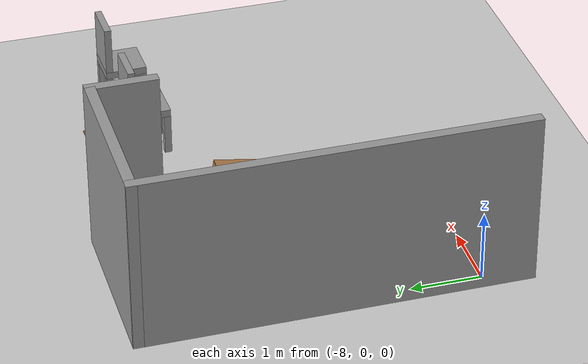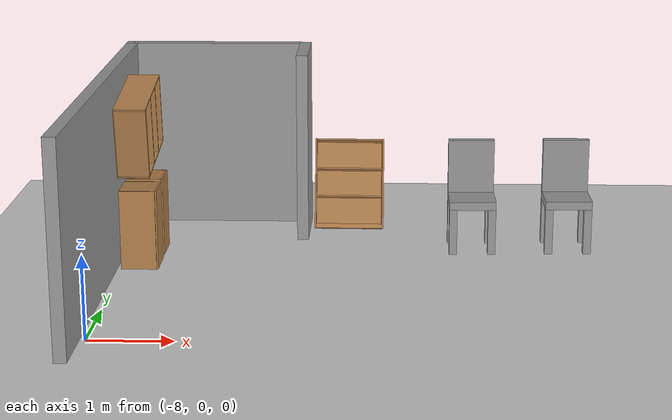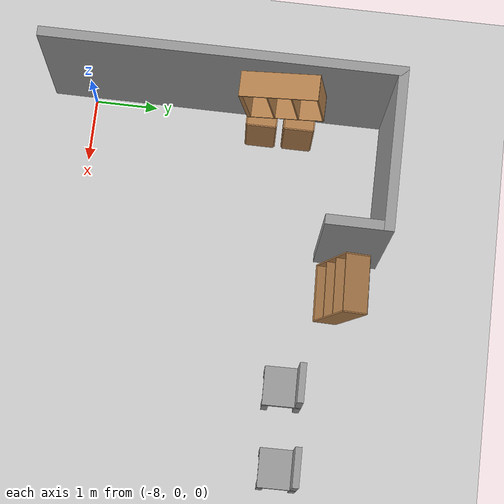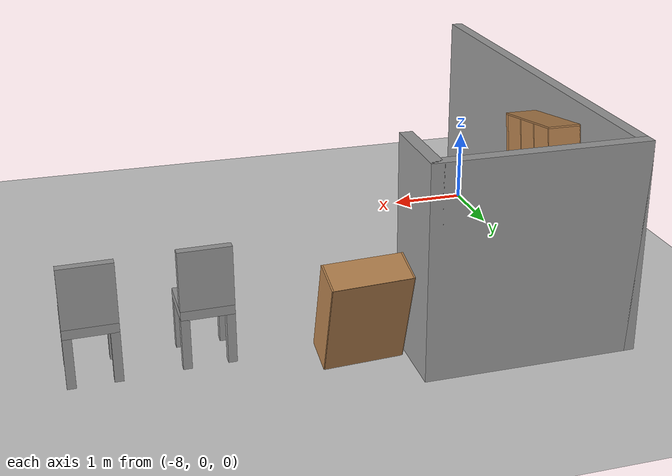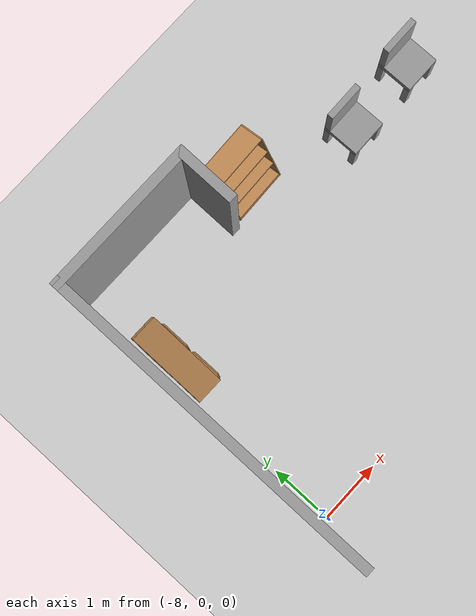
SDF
<sdf version="1.7">
 <world name="default">
  <model name="ground_plane">
   <static>1</static>
   <link name="link">
    <collision name="collision">
     <geometry><plane><normal>0 0 1</normal><size>100 100</size></plane></geometry>
     <surface>
      <contact><collide_bitmask>65535</collide_bitmask></contact>
      <friction><ode><mu>100</mu><mu2>50</mu2></ode></friction>
     </surface>
    </collision>
    <visual name="visual">
     <cast_shadows>0</cast_shadows>
     <geometry><plane><normal>0 0 1</normal><size>100 100</size></plane></geometry>
     <material>
      <script><uri>file://media/materials/scripts/gazebo.material</uri><name>Gazebo/Grey</name></script>
     </material>
    </visual>
   </link>
  </model>
  <model name="demo_clean">
   <link name="Wall_0">
    <pose>-8.14649 2.06618 0 0 0 -1.5708</pose>
    <visual name="Wall_0_Visual">
     <pose>0 0 1.25 0 -0 0</pose>
     <geometry><box><size>5.5 0.15 2.5</size></box></geometry>
     <material>
      <script><uri>file://media/materials/scripts/gazebo.material</uri><name>Gazebo/Grey</name></script>
      <ambient>1 1 1 1</ambient>
      <shader type="pixel"/>
     </material>
     <meta><layer>0</layer></meta>
    </visual>
    <collision name="Wall_0_Collision">
     <pose>0 0 1.25 0 -0 0</pose>
     <geometry><box><size>5.5 0.15 2.5</size></box></geometry>
     <surface>
      <friction>
       <ode><mu>1</mu><mu2>1</mu2><fdir1>0 0 0</fdir1><slip1>0</slip1><slip2>0</slip2></ode>
       <torsional>
        <coefficient>1</coefficient>
        <patch_radius>0</patch_radius>
        <surface_radius>0</surface_radius>
        <use_patch_radius>1</use_patch_radius>
        <ode><slip>0</slip></ode>
       </torsional>
      </friction>
      <bounce><restitution_coefficient>0</restitution_coefficient><threshold>1e+06</threshold></bounce>
      <contact>
       <collide_without_contact>0</collide_without_contact>
       <collide_without_contact_bitmask>1</collide_without_contact_bitmask>
       <collide_bitmask>1</collide_bitmask>
       <ode>
        <soft_cfm>0</soft_cfm>
        <soft_erp>0.2</soft_erp>
        <kp>1e+13</kp>
        <kd>1</kd>
        <max_vel>0.01</max_vel>
        <min_depth>0</min_depth>
       </ode>
       <bullet>
        <split_impulse>1</split_impulse>
        <split_impulse_penetration_threshold>-0.01</split_impulse_penetration_threshold>
        <soft_cfm>0</soft_cfm>
        <soft_erp>0.2</soft_erp>
        <kp>1e+13</kp>
        <kd>1</kd>
       </bullet>
      </contact>
     </surface>
    </collision>
   </link>
   <link name="Wall_6">
    <pose>-6.97149 4.74118 0 0 -0 0</pose>
    <visual name="Wall_6_Visual">
     <pose>0 0 1.25 0 -0 0</pose>
     <geometry><box><size>2.5 0.15 2.5</size></box></geometry>
     <material>
      <script><uri>file://media/materials/scripts/gazebo.material</uri><name>Gazebo/Grey</name></script>
      <ambient>1 1 1 1</ambient>
      <shader type="pixel"/>
     </material>
     <meta><layer>0</layer></meta>
    </visual>
    <collision name="Wall_6_Collision">
     <pose>0 0 1.25 0 -0 0</pose>
     <geometry><box><size>2.5 0.15 2.5</size></box></geometry>
     <surface>
      <friction>
       <ode><mu>1</mu><mu2>1</mu2><fdir1>0 0 0</fdir1><slip1>0</slip1><slip2>0</slip2></ode>
       <torsional>
        <coefficient>1</coefficient>
        <patch_radius>0</patch_radius>
        <surface_radius>0</surface_radius>
        <use_patch_radius>1</use_patch_radius>
        <ode><slip>0</slip></ode>
       </torsional>
      </friction>
      <bounce><restitution_coefficient>0</restitution_coefficient><threshold>1e+06</threshold></bounce>
      <contact>
       <collide_without_contact>0</collide_without_contact>
       <collide_without_contact_bitmask>1</collide_without_contact_bitmask>
       <collide_bitmask>1</collide_bitmask>
       <ode>
        <soft_cfm>0</soft_cfm>
        <soft_erp>0.2</soft_erp>
        <kp>1e+13</kp>
        <kd>1</kd>
        <max_vel>0.01</max_vel>
        <min_depth>0</min_depth>
       </ode>
       <bullet>
        <split_impulse>1</split_impulse>
        <split_impulse_penetration_threshold>-0.01</split_impulse_penetration_threshold>
        <soft_cfm>0</soft_cfm>
        <soft_erp>0.2</soft_erp>
        <kp>1e+13</kp>
        <kd>1</kd>
       </bullet>
      </contact>
     </surface>
    </collision>
   </link>
   <link name="Wall_7">
    <pose>-5.79649 4.31618 0 0 0 -1.5708</pose>
    <visual name="Wall_7_Visual">
     <pose>0 0 1.25 0 -0 0</pose>
     <geometry><box><size>1 0.15 2.5</size></box></geometry>
     <material>
      <script><uri>file://media/materials/scripts/gazebo.material</uri><name>Gazebo/Grey</name></script>
      <ambient>1 1 1 1</ambient>
      <shader type="pixel"/>
     </material>
     <meta><layer>0</layer></meta>
    </visual>
    <collision name="Wall_7_Collision">
     <pose>0 0 1.25 0 -0 0</pose>
     <geometry><box><size>1 0.15 2.5</size></box></geometry>
     <surface>
      <friction>
       <ode><mu>1</mu><mu2>1</mu2><fdir1>0 0 0</fdir1><slip1>0</slip1><slip2>0</slip2></ode>
       <torsional>
        <coefficient>1</coefficient>
        <patch_radius>0</patch_radius>
        <surface_radius>0</surface_radius>
        <use_patch_radius>1</use_patch_radius>
        <ode><slip>0</slip></ode>
       </torsional>
      </friction>
      <bounce><restitution_coefficient>0</restitution_coefficient><threshold>1e+06</threshold></bounce>
      <contact>
       <collide_without_contact>0</collide_without_contact>
       <collide_without_contact_bitmask>1</collide_without_contact_bitmask>
       <collide_bitmask>1</collide_bitmask>
       <ode>
        <soft_cfm>0</soft_cfm>
        <soft_erp>0.2</soft_erp>
        <kp>1e+13</kp>
        <kd>1</kd>
        <max_vel>0.01</max_vel>
        <min_depth>0</min_depth>
       </ode>
       <bullet>
        <split_impulse>1</split_impulse>
        <split_impulse_penetration_threshold>-0.01</split_impulse_penetration_threshold>
        <soft_cfm>0</soft_cfm>
        <soft_erp>0.2</soft_erp>
        <kp>1e+13</kp>
        <kd>1</kd>
       </bullet>
      </contact>
     </surface>
    </collision>
   </link>
   <static>1</static>
  </model>
  <model name="simple_chair_0_clone_0">
   <link name="link_0_clone">
    <inertial>
     <mass>1</mass>
     <inertia>
      <ixx>0.166667</ixx>
      <ixy>0</ixy>
      <ixz>0</ixz>
      <iyy>0.166667</iyy>
      <iyz>0</iyz>
      <izz>0.166667</izz>
     </inertia>
    </inertial>
    <pose>-0.041667 -0 0.165833 0 -0 0</pose>
    <visual name="visual">
     <geometry><box><size>0.6 0.6 0.11</size></box></geometry>
     <material>
      <lighting>1</lighting>
      <script><uri>file://media/materials/scripts/gazebo.material</uri><name>Gazebo/Grey</name></script>
      <shader type="pixel"><normal_map>__default__</normal_map></shader>
      <ambient>0.3 0.3 0.3 1</ambient>
      <diffuse>0.7 0.7 0.7 1</diffuse>
      <specular>0.01 0.01 0.01 1</specular>
      <emissive>0 0 0 1</emissive>
     </material>
    </visual>
    <collision name="collision">
     <geometry><box><size>0.6 0.6 0.1</size></box></geometry>
     <surface>
      <friction>
       <ode><mu>1</mu><mu2>1</mu2><fdir1>0 0 0</fdir1><slip1>0</slip1><slip2>0</slip2></ode>
       <torsional>
        <coefficient>1</coefficient>
        <patch_radius>0</patch_radius>
        <surface_radius>0</surface_radius>
        <use_patch_radius>1</use_patch_radius>
        <ode><slip>0</slip></ode>
       </torsional>
      </friction>
      <bounce><restitution_coefficient>0</restitution_coefficient><threshold>1e+06</threshold></bounce>
      <contact>
       <collide_without_contact>0</collide_without_contact>
       <collide_without_contact_bitmask>1</collide_without_contact_bitmask>
       <collide_bitmask>1</collide_bitmask>
       <ode>
        <soft_cfm>0</soft_cfm>
        <soft_erp>0.2</soft_erp>
        <kp>1e+13</kp>
        <kd>1</kd>
        <max_vel>0.01</max_vel>
        <min_depth>0</min_depth>
       </ode>
       <bullet>
        <split_impulse>1</split_impulse>
        <split_impulse_penetration_threshold>-0.01</split_impulse_penetration_threshold>
        <soft_cfm>0</soft_cfm>
        <soft_erp>0.2</soft_erp>
        <kp>1e+13</kp>
        <kd>1</kd>
       </bullet>
      </contact>
     </surface>
    </collision>
   </link>
   <link name="link_1_clone">
    <inertial>
     <mass>1</mass>
     <inertia>
      <ixx>0.166667</ixx>
      <ixy>0</ixy>
      <ixz>0</ixz>
      <iyy>0.166667</iyy>
      <iyz>0</iyz>
      <izz>0.166667</izz>
     </inertia>
    </inertial>
    <pose>-0.291667 0.25 -0.184167 0 -0 0</pose>
    <visual name="visual">
     <geometry><box><size>0.1 0.1 0.6</size></box></geometry>
     <material>
      <lighting>1</lighting>
      <script><uri>file://media/materials/scripts/gazebo.material</uri><name>Gazebo/Grey</name></script>
      <shader type="pixel"><normal_map>__default__</normal_map></shader>
      <ambient>0.3 0.3 0.3 1</ambient>
      <diffuse>0.7 0.7 0.7 1</diffuse>
      <specular>0.01 0.01 0.01 1</specular>
      <emissive>0 0 0 1</emissive>
     </material>
    </visual>
    <collision name="collision">
     <geometry><box><size>0.1 0.1 0.6</size></box></geometry>
     <surface>
      <friction>
       <ode><mu>1</mu><mu2>1</mu2><fdir1>0 0 0</fdir1><slip1>0</slip1><slip2>0</slip2></ode>
       <torsional>
        <coefficient>1</coefficient>
        <patch_radius>0</patch_radius>
        <surface_radius>0</surface_radius>
        <use_patch_radius>1</use_patch_radius>
        <ode><slip>0</slip></ode>
       </torsional>
      </friction>
      <bounce><restitution_coefficient>0</restitution_coefficient><threshold>1e+06</threshold></bounce>
      <contact>
       <collide_without_contact>0</collide_without_contact>
       <collide_without_contact_bitmask>1</collide_without_contact_bitmask>
       <collide_bitmask>1</collide_bitmask>
       <ode>
        <soft_cfm>0</soft_cfm>
        <soft_erp>0.2</soft_erp>
        <kp>1e+13</kp>
        <kd>1</kd>
        <max_vel>0.01</max_vel>
        <min_depth>0</min_depth>
       </ode>
       <bullet>
        <split_impulse>1</split_impulse>
        <split_impulse_penetration_threshold>-0.01</split_impulse_penetration_threshold>
        <soft_cfm>0</soft_cfm>
        <soft_erp>0.2</soft_erp>
        <kp>1e+13</kp>
        <kd>1</kd>
       </bullet>
      </contact>
     </surface>
    </collision>
   </link>
   <link name="link_1_clone_0">
    <inertial>
     <mass>1</mass>
     <inertia>
      <ixx>0.166667</ixx>
      <ixy>0</ixy>
      <ixz>0</ixz>
      <iyy>0.166667</iyy>
      <iyz>0</iyz>
      <izz>0.166667</izz>
     </inertia>
    </inertial>
    <pose>0.208333 0.25 -0.184167 0 -0 0</pose>
    <visual name="visual">
     <geometry><box><size>0.1 0.1 0.6</size></box></geometry>
     <material>
      <lighting>1</lighting>
      <script><uri>file://media/materials/scripts/gazebo.material</uri><name>Gazebo/Grey</name></script>
      <shader type="pixel"><normal_map>__default__</normal_map></shader>
      <ambient>0.3 0.3 0.3 1</ambient>
      <diffuse>0.7 0.7 0.7 1</diffuse>
      <specular>0.01 0.01 0.01 1</specular>
      <emissive>0 0 0 1</emissive>
     </material>
    </visual>
    <collision name="collision">
     <geometry><box><size>0.1 0.1 0.6</size></box></geometry>
     <surface>
      <friction>
       <ode><mu>1</mu><mu2>1</mu2><fdir1>0 0 0</fdir1><slip1>0</slip1><slip2>0</slip2></ode>
       <torsional>
        <coefficient>1</coefficient>
        <patch_radius>0</patch_radius>
        <surface_radius>0</surface_radius>
        <use_patch_radius>1</use_patch_radius>
        <ode><slip>0</slip></ode>
       </torsional>
      </friction>
      <bounce><restitution_coefficient>0</restitution_coefficient><threshold>1e+06</threshold></bounce>
      <contact>
       <collide_without_contact>0</collide_without_contact>
       <collide_without_contact_bitmask>1</collide_without_contact_bitmask>
       <collide_bitmask>1</collide_bitmask>
       <ode>
        <soft_cfm>0</soft_cfm>
        <soft_erp>0.2</soft_erp>
        <kp>1e+13</kp>
        <kd>1</kd>
        <max_vel>0.01</max_vel>
        <min_depth>0</min_depth>
       </ode>
       <bullet>
        <split_impulse>1</split_impulse>
        <split_impulse_penetration_threshold>-0.01</split_impulse_penetration_threshold>
        <soft_cfm>0</soft_cfm>
        <soft_erp>0.2</soft_erp>
        <kp>1e+13</kp>
        <kd>1</kd>
       </bullet>
      </contact>
     </surface>
    </collision>
   </link>
   <link name="link_1_clone_1">
    <inertial>
     <mass>1</mass>
     <inertia>
      <ixx>0.166667</ixx>
      <ixy>0</ixy>
      <ixz>0</ixz>
      <iyy>0.166667</iyy>
      <iyz>0</iyz>
      <izz>0.166667</izz>
     </inertia>
    </inertial>
    <pose>0.208333 -0.25 -0.184167 0 -0 0</pose>
    <visual name="visual">
     <geometry><box><size>0.1 0.1 0.6</size></box></geometry>
     <material>
      <lighting>1</lighting>
      <script><uri>file://media/materials/scripts/gazebo.material</uri><name>Gazebo/Grey</name></script>
      <shader type="pixel"><normal_map>__default__</normal_map></shader>
      <ambient>0.3 0.3 0.3 1</ambient>
      <diffuse>0.7 0.7 0.7 1</diffuse>
      <specular>0.01 0.01 0.01 1</specular>
      <emissive>0 0 0 1</emissive>
     </material>
    </visual>
    <collision name="collision">
     <geometry><box><size>0.1 0.1 0.6</size></box></geometry>
     <surface>
      <friction>
       <ode><mu>1</mu><mu2>1</mu2><fdir1>0 0 0</fdir1><slip1>0</slip1><slip2>0</slip2></ode>
       <torsional>
        <coefficient>1</coefficient>
        <patch_radius>0</patch_radius>
        <surface_radius>0</surface_radius>
        <use_patch_radius>1</use_patch_radius>
        <ode><slip>0</slip></ode>
       </torsional>
      </friction>
      <bounce><restitution_coefficient>0</restitution_coefficient><threshold>1e+06</threshold></bounce>
      <contact>
       <collide_without_contact>0</collide_without_contact>
       <collide_without_contact_bitmask>1</collide_without_contact_bitmask>
       <collide_bitmask>1</collide_bitmask>
       <ode>
        <soft_cfm>0</soft_cfm>
        <soft_erp>0.2</soft_erp>
        <kp>1e+13</kp>
        <kd>1</kd>
        <max_vel>0.01</max_vel>
        <min_depth>0</min_depth>
       </ode>
       <bullet>
        <split_impulse>1</split_impulse>
        <split_impulse_penetration_threshold>-0.01</split_impulse_penetration_threshold>
        <soft_cfm>0</soft_cfm>
        <soft_erp>0.2</soft_erp>
        <kp>1e+13</kp>
        <kd>1</kd>
       </bullet>
      </contact>
     </surface>
    </collision>
   </link>
   <link name="link_1_clone_clone">
    <inertial>
     <mass>1</mass>
     <inertia>
      <ixx>0.166667</ixx>
      <ixy>0</ixy>
      <ixz>0</ixz>
      <iyy>0.166667</iyy>
      <iyz>0</iyz>
      <izz>0.166667</izz>
     </inertia>
    </inertial>
    <pose>-0.291667 -0.25 -0.184167 0 -0 0</pose>
    <visual name="visual">
     <geometry><box><size>0.1 0.1 0.6</size></box></geometry>
     <material>
      <lighting>1</lighting>
      <script><uri>file://media/materials/scripts/gazebo.material</uri><name>Gazebo/Grey</name></script>
      <shader type="pixel"><normal_map>__default__</normal_map></shader>
      <ambient>0.3 0.3 0.3 1</ambient>
      <diffuse>0.7 0.7 0.7 1</diffuse>
      <specular>0.01 0.01 0.01 1</specular>
      <emissive>0 0 0 1</emissive>
     </material>
    </visual>
    <collision name="collision">
     <geometry><box><size>0.1 0.1 0.6</size></box></geometry>
     <surface>
      <friction>
       <ode><mu>1</mu><mu2>1</mu2><fdir1>0 0 0</fdir1><slip1>0</slip1><slip2>0</slip2></ode>
       <torsional>
        <coefficient>1</coefficient>
        <patch_radius>0</patch_radius>
        <surface_radius>0</surface_radius>
        <use_patch_radius>1</use_patch_radius>
        <ode><slip>0</slip></ode>
       </torsional>
      </friction>
      <bounce><restitution_coefficient>0</restitution_coefficient><threshold>1e+06</threshold></bounce>
      <contact>
       <collide_without_contact>0</collide_without_contact>
       <collide_without_contact_bitmask>1</collide_without_contact_bitmask>
       <collide_bitmask>1</collide_bitmask>
       <ode>
        <soft_cfm>0</soft_cfm>
        <soft_erp>0.2</soft_erp>
        <kp>1e+13</kp>
        <kd>1</kd>
        <max_vel>0.01</max_vel>
        <min_depth>0</min_depth>
       </ode>
       <bullet>
        <split_impulse>1</split_impulse>
        <split_impulse_penetration_threshold>-0.01</split_impulse_penetration_threshold>
        <soft_cfm>0</soft_cfm>
        <soft_erp>0.2</soft_erp>
        <kp>1e+13</kp>
        <kd>1</kd>
       </bullet>
      </contact>
     </surface>
    </collision>
   </link>
   <link name="link_2_clone">
    <inertial>
     <mass>1</mass>
     <inertia>
      <ixx>0.166667</ixx>
      <ixy>0</ixy>
      <ixz>0</ixz>
      <iyy>0.166667</iyy>
      <iyz>0</iyz>
      <izz>0.166667</izz>
     </inertia>
    </inertial>
    <pose>0.208333 -0 0.570833 0 -0 0</pose>
    <visual name="visual">
     <geometry><box><size>0.1 0.6 0.7</size></box></geometry>
     <material>
      <lighting>1</lighting>
      <script><uri>file://media/materials/scripts/gazebo.material</uri><name>Gazebo/Grey</name></script>
      <shader type="pixel"><normal_map>__default__</normal_map></shader>
      <ambient>0.3 0.3 0.3 1</ambient>
      <diffuse>0.7 0.7 0.7 1</diffuse>
      <specular>0.01 0.01 0.01 1</specular>
      <emissive>0 0 0 1</emissive>
     </material>
    </visual>
    <collision name="collision">
     <geometry><box><size>0.1 0.6 0.7</size></box></geometry>
     <surface>
      <friction>
       <ode><mu>1</mu><mu2>1</mu2><fdir1>0 0 0</fdir1><slip1>0</slip1><slip2>0</slip2></ode>
       <torsional>
        <coefficient>1</coefficient>
        <patch_radius>0</patch_radius>
        <surface_radius>0</surface_radius>
        <use_patch_radius>1</use_patch_radius>
        <ode><slip>0</slip></ode>
       </torsional>
      </friction>
      <bounce><restitution_coefficient>0</restitution_coefficient><threshold>1e+06</threshold></bounce>
      <contact>
       <collide_without_contact>0</collide_without_contact>
       <collide_without_contact_bitmask>1</collide_without_contact_bitmask>
       <collide_bitmask>1</collide_bitmask>
       <ode>
        <soft_cfm>0</soft_cfm>
        <soft_erp>0.2</soft_erp>
        <kp>1e+13</kp>
        <kd>1</kd>
        <max_vel>0.01</max_vel>
        <min_depth>0</min_depth>
       </ode>
       <bullet>
        <split_impulse>1</split_impulse>
        <split_impulse_penetration_threshold>-0.01</split_impulse_penetration_threshold>
        <soft_cfm>0</soft_cfm>
        <soft_erp>0.2</soft_erp>
        <kp>1e+13</kp>
        <kd>1</kd>
       </bullet>
      </contact>
     </surface>
    </collision>
   </link>
   <joint name="link_0_clone_JOINT_0" type="fixed">
    <parent>link_0_clone</parent>
    <child>link_1_clone_clone</child>
    <physics>
     <ode><limit><cfm>0</cfm><erp>0.2</erp></limit><suspension><cfm>0</cfm><erp>0.2</erp></suspension></ode>
    </physics>
   </joint>
   <joint name="link_0_clone_JOINT_1" type="fixed">
    <parent>link_0_clone</parent>
    <child>link_1_clone</child>
    <physics>
     <ode><limit><cfm>0</cfm><erp>0.2</erp></limit><suspension><cfm>0</cfm><erp>0.2</erp></suspension></ode>
    </physics>
   </joint>
   <joint name="link_0_clone_JOINT_2" type="fixed">
    <parent>link_0_clone</parent>
    <child>link_1_clone_1</child>
    <physics>
     <ode><limit><cfm>0</cfm><erp>0.2</erp></limit><suspension><cfm>0</cfm><erp>0.2</erp></suspension></ode>
    </physics>
   </joint>
   <joint name="link_0_clone_JOINT_3" type="fixed">
    <parent>link_0_clone</parent>
    <child>link_2_clone</child>
    <physics>
     <ode><limit><cfm>0</cfm><erp>0.2</erp></limit><suspension><cfm>0</cfm><erp>0.2</erp></suspension></ode>
    </physics>
   </joint>
   <joint name="link_0_clone_JOINT_4" type="fixed">
    <parent>link_0_clone</parent>
    <child>link_1_clone_0</child>
    <physics>
     <ode><limit><cfm>0</cfm><erp>0.2</erp></limit><suspension><cfm>0</cfm><erp>0.2</erp></suspension></ode>
    </physics>
   </joint>
   <static>0</static>
   <pose>-3.56784 3.57353 0.484167 0 -0 1.58993</pose>
  </model>
  <model name="simple_chair_0_clone_1">
   <link name="link_0_clone">
    <inertial>
     <mass>1</mass>
     <inertia>
      <ixx>0.166667</ixx>
      <ixy>0</ixy>
      <ixz>0</ixz>
      <iyy>0.166667</iyy>
      <iyz>0</iyz>
      <izz>0.166667</izz>
     </inertia>
    </inertial>
    <pose>-0.041667 -0 0.165833 0 -0 0</pose>
    <visual name="visual">
     <geometry><box><size>0.6 0.6 0.11</size></box></geometry>
     <material>
      <lighting>1</lighting>
      <script><uri>file://media/materials/scripts/gazebo.material</uri><name>Gazebo/Grey</name></script>
      <shader type="pixel"><normal_map>__default__</normal_map></shader>
      <ambient>0.3 0.3 0.3 1</ambient>
      <diffuse>0.7 0.7 0.7 1</diffuse>
      <specular>0.01 0.01 0.01 1</specular>
      <emissive>0 0 0 1</emissive>
     </material>
    </visual>
    <collision name="collision">
     <geometry><box><size>0.6 0.6 0.1</size></box></geometry>
     <surface>
      <friction>
       <ode><mu>1</mu><mu2>1</mu2><fdir1>0 0 0</fdir1><slip1>0</slip1><slip2>0</slip2></ode>
       <torsional>
        <coefficient>1</coefficient>
        <patch_radius>0</patch_radius>
        <surface_radius>0</surface_radius>
        <use_patch_radius>1</use_patch_radius>
        <ode><slip>0</slip></ode>
       </torsional>
      </friction>
      <bounce><restitution_coefficient>0</restitution_coefficient><threshold>1e+06</threshold></bounce>
      <contact>
       <collide_without_contact>0</collide_without_contact>
       <collide_without_contact_bitmask>1</collide_without_contact_bitmask>
       <collide_bitmask>1</collide_bitmask>
       <ode>
        <soft_cfm>0</soft_cfm>
        <soft_erp>0.2</soft_erp>
        <kp>1e+13</kp>
        <kd>1</kd>
        <max_vel>0.01</max_vel>
        <min_depth>0</min_depth>
       </ode>
       <bullet>
        <split_impulse>1</split_impulse>
        <split_impulse_penetration_threshold>-0.01</split_impulse_penetration_threshold>
        <soft_cfm>0</soft_cfm>
        <soft_erp>0.2</soft_erp>
        <kp>1e+13</kp>
        <kd>1</kd>
       </bullet>
      </contact>
     </surface>
    </collision>
   </link>
   <link name="link_1_clone">
    <inertial>
     <mass>1</mass>
     <inertia>
      <ixx>0.166667</ixx>
      <ixy>0</ixy>
      <ixz>0</ixz>
      <iyy>0.166667</iyy>
      <iyz>0</iyz>
      <izz>0.166667</izz>
     </inertia>
    </inertial>
    <pose>-0.291667 0.25 -0.184167 0 -0 0</pose>
    <visual name="visual">
     <geometry><box><size>0.1 0.1 0.6</size></box></geometry>
     <material>
      <lighting>1</lighting>
      <script><uri>file://media/materials/scripts/gazebo.material</uri><name>Gazebo/Grey</name></script>
      <shader type="pixel"><normal_map>__default__</normal_map></shader>
      <ambient>0.3 0.3 0.3 1</ambient>
      <diffuse>0.7 0.7 0.7 1</diffuse>
      <specular>0.01 0.01 0.01 1</specular>
      <emissive>0 0 0 1</emissive>
     </material>
    </visual>
    <collision name="collision">
     <geometry><box><size>0.1 0.1 0.6</size></box></geometry>
     <surface>
      <friction>
       <ode><mu>1</mu><mu2>1</mu2><fdir1>0 0 0</fdir1><slip1>0</slip1><slip2>0</slip2></ode>
       <torsional>
        <coefficient>1</coefficient>
        <patch_radius>0</patch_radius>
        <surface_radius>0</surface_radius>
        <use_patch_radius>1</use_patch_radius>
        <ode><slip>0</slip></ode>
       </torsional>
      </friction>
      <bounce><restitution_coefficient>0</restitution_coefficient><threshold>1e+06</threshold></bounce>
      <contact>
       <collide_without_contact>0</collide_without_contact>
       <collide_without_contact_bitmask>1</collide_without_contact_bitmask>
       <collide_bitmask>1</collide_bitmask>
       <ode>
        <soft_cfm>0</soft_cfm>
        <soft_erp>0.2</soft_erp>
        <kp>1e+13</kp>
        <kd>1</kd>
        <max_vel>0.01</max_vel>
        <min_depth>0</min_depth>
       </ode>
       <bullet>
        <split_impulse>1</split_impulse>
        <split_impulse_penetration_threshold>-0.01</split_impulse_penetration_threshold>
        <soft_cfm>0</soft_cfm>
        <soft_erp>0.2</soft_erp>
        <kp>1e+13</kp>
        <kd>1</kd>
       </bullet>
      </contact>
     </surface>
    </collision>
   </link>
   <link name="link_1_clone_0">
    <inertial>
     <mass>1</mass>
     <inertia>
      <ixx>0.166667</ixx>
      <ixy>0</ixy>
      <ixz>0</ixz>
      <iyy>0.166667</iyy>
      <iyz>0</iyz>
      <izz>0.166667</izz>
     </inertia>
    </inertial>
    <pose>0.208333 0.25 -0.184167 0 -0 0</pose>
    <visual name="visual">
     <geometry><box><size>0.1 0.1 0.6</size></box></geometry>
     <material>
      <lighting>1</lighting>
      <script><uri>file://media/materials/scripts/gazebo.material</uri><name>Gazebo/Grey</name></script>
      <shader type="pixel"><normal_map>__default__</normal_map></shader>
      <ambient>0.3 0.3 0.3 1</ambient>
      <diffuse>0.7 0.7 0.7 1</diffuse>
      <specular>0.01 0.01 0.01 1</specular>
      <emissive>0 0 0 1</emissive>
     </material>
    </visual>
    <collision name="collision">
     <geometry><box><size>0.1 0.1 0.6</size></box></geometry>
     <surface>
      <friction>
       <ode><mu>1</mu><mu2>1</mu2><fdir1>0 0 0</fdir1><slip1>0</slip1><slip2>0</slip2></ode>
       <torsional>
        <coefficient>1</coefficient>
        <patch_radius>0</patch_radius>
        <surface_radius>0</surface_radius>
        <use_patch_radius>1</use_patch_radius>
        <ode><slip>0</slip></ode>
       </torsional>
      </friction>
      <bounce><restitution_coefficient>0</restitution_coefficient><threshold>1e+06</threshold></bounce>
      <contact>
       <collide_without_contact>0</collide_without_contact>
       <collide_without_contact_bitmask>1</collide_without_contact_bitmask>
       <collide_bitmask>1</collide_bitmask>
       <ode>
        <soft_cfm>0</soft_cfm>
        <soft_erp>0.2</soft_erp>
        <kp>1e+13</kp>
        <kd>1</kd>
        <max_vel>0.01</max_vel>
        <min_depth>0</min_depth>
       </ode>
       <bullet>
        <split_impulse>1</split_impulse>
        <split_impulse_penetration_threshold>-0.01</split_impulse_penetration_threshold>
        <soft_cfm>0</soft_cfm>
        <soft_erp>0.2</soft_erp>
        <kp>1e+13</kp>
        <kd>1</kd>
       </bullet>
      </contact>
     </surface>
    </collision>
   </link>
   <link name="link_1_clone_1">
    <inertial>
     <mass>1</mass>
     <inertia>
      <ixx>0.166667</ixx>
      <ixy>0</ixy>
      <ixz>0</ixz>
      <iyy>0.166667</iyy>
      <iyz>0</iyz>
      <izz>0.166667</izz>
     </inertia>
    </inertial>
    <pose>0.208333 -0.25 -0.184167 0 -0 0</pose>
    <visual name="visual">
     <geometry><box><size>0.1 0.1 0.6</size></box></geometry>
     <material>
      <lighting>1</lighting>
      <script><uri>file://media/materials/scripts/gazebo.material</uri><name>Gazebo/Grey</name></script>
      <shader type="pixel"><normal_map>__default__</normal_map></shader>
      <ambient>0.3 0.3 0.3 1</ambient>
      <diffuse>0.7 0.7 0.7 1</diffuse>
      <specular>0.01 0.01 0.01 1</specular>
      <emissive>0 0 0 1</emissive>
     </material>
    </visual>
    <collision name="collision">
     <geometry><box><size>0.1 0.1 0.6</size></box></geometry>
     <surface>
      <friction>
       <ode><mu>1</mu><mu2>1</mu2><fdir1>0 0 0</fdir1><slip1>0</slip1><slip2>0</slip2></ode>
       <torsional>
        <coefficient>1</coefficient>
        <patch_radius>0</patch_radius>
        <surface_radius>0</surface_radius>
        <use_patch_radius>1</use_patch_radius>
        <ode><slip>0</slip></ode>
       </torsional>
      </friction>
      <bounce><restitution_coefficient>0</restitution_coefficient><threshold>1e+06</threshold></bounce>
      <contact>
       <collide_without_contact>0</collide_without_contact>
       <collide_without_contact_bitmask>1</collide_without_contact_bitmask>
       <collide_bitmask>1</collide_bitmask>
       <ode>
        <soft_cfm>0</soft_cfm>
        <soft_erp>0.2</soft_erp>
        <kp>1e+13</kp>
        <kd>1</kd>
        <max_vel>0.01</max_vel>
        <min_depth>0</min_depth>
       </ode>
       <bullet>
        <split_impulse>1</split_impulse>
        <split_impulse_penetration_threshold>-0.01</split_impulse_penetration_threshold>
        <soft_cfm>0</soft_cfm>
        <soft_erp>0.2</soft_erp>
        <kp>1e+13</kp>
        <kd>1</kd>
       </bullet>
      </contact>
     </surface>
    </collision>
   </link>
   <link name="link_1_clone_clone">
    <inertial>
     <mass>1</mass>
     <inertia>
      <ixx>0.166667</ixx>
      <ixy>0</ixy>
      <ixz>0</ixz>
      <iyy>0.166667</iyy>
      <iyz>0</iyz>
      <izz>0.166667</izz>
     </inertia>
    </inertial>
    <pose>-0.291667 -0.25 -0.184167 0 -0 0</pose>
    <visual name="visual">
     <geometry><box><size>0.1 0.1 0.6</size></box></geometry>
     <material>
      <lighting>1</lighting>
      <script><uri>file://media/materials/scripts/gazebo.material</uri><name>Gazebo/Grey</name></script>
      <shader type="pixel"><normal_map>__default__</normal_map></shader>
      <ambient>0.3 0.3 0.3 1</ambient>
      <diffuse>0.7 0.7 0.7 1</diffuse>
      <specular>0.01 0.01 0.01 1</specular>
      <emissive>0 0 0 1</emissive>
     </material>
    </visual>
    <collision name="collision">
     <geometry><box><size>0.1 0.1 0.6</size></box></geometry>
     <surface>
      <friction>
       <ode><mu>1</mu><mu2>1</mu2><fdir1>0 0 0</fdir1><slip1>0</slip1><slip2>0</slip2></ode>
       <torsional>
        <coefficient>1</coefficient>
        <patch_radius>0</patch_radius>
        <surface_radius>0</surface_radius>
        <use_patch_radius>1</use_patch_radius>
        <ode><slip>0</slip></ode>
       </torsional>
      </friction>
      <bounce><restitution_coefficient>0</restitution_coefficient><threshold>1e+06</threshold></bounce>
      <contact>
       <collide_without_contact>0</collide_without_contact>
       <collide_without_contact_bitmask>1</collide_without_contact_bitmask>
       <collide_bitmask>1</collide_bitmask>
       <ode>
        <soft_cfm>0</soft_cfm>
        <soft_erp>0.2</soft_erp>
        <kp>1e+13</kp>
        <kd>1</kd>
        <max_vel>0.01</max_vel>
        <min_depth>0</min_depth>
       </ode>
       <bullet>
        <split_impulse>1</split_impulse>
        <split_impulse_penetration_threshold>-0.01</split_impulse_penetration_threshold>
        <soft_cfm>0</soft_cfm>
        <soft_erp>0.2</soft_erp>
        <kp>1e+13</kp>
        <kd>1</kd>
       </bullet>
      </contact>
     </surface>
    </collision>
   </link>
   <link name="link_2_clone">
    <inertial>
     <mass>1</mass>
     <inertia>
      <ixx>0.166667</ixx>
      <ixy>0</ixy>
      <ixz>0</ixz>
      <iyy>0.166667</iyy>
      <iyz>0</iyz>
      <izz>0.166667</izz>
     </inertia>
    </inertial>
    <pose>0.208333 -0 0.570833 0 -0 0</pose>
    <visual name="visual">
     <geometry><box><size>0.1 0.6 0.7</size></box></geometry>
     <material>
      <lighting>1</lighting>
      <script><uri>file://media/materials/scripts/gazebo.material</uri><name>Gazebo/Grey</name></script>
      <shader type="pixel"><normal_map>__default__</normal_map></shader>
      <ambient>0.3 0.3 0.3 1</ambient>
      <diffuse>0.7 0.7 0.7 1</diffuse>
      <specular>0.01 0.01 0.01 1</specular>
      <emissive>0 0 0 1</emissive>
     </material>
    </visual>
    <collision name="collision">
     <geometry><box><size>0.1 0.6 0.7</size></box></geometry>
     <surface>
      <friction>
       <ode><mu>1</mu><mu2>1</mu2><fdir1>0 0 0</fdir1><slip1>0</slip1><slip2>0</slip2></ode>
       <torsional>
        <coefficient>1</coefficient>
        <patch_radius>0</patch_radius>
        <surface_radius>0</surface_radius>
        <use_patch_radius>1</use_patch_radius>
        <ode><slip>0</slip></ode>
       </torsional>
      </friction>
      <bounce><restitution_coefficient>0</restitution_coefficient><threshold>1e+06</threshold></bounce>
      <contact>
       <collide_without_contact>0</collide_without_contact>
       <collide_without_contact_bitmask>1</collide_without_contact_bitmask>
       <collide_bitmask>1</collide_bitmask>
       <ode>
        <soft_cfm>0</soft_cfm>
        <soft_erp>0.2</soft_erp>
        <kp>1e+13</kp>
        <kd>1</kd>
        <max_vel>0.01</max_vel>
        <min_depth>0</min_depth>
       </ode>
       <bullet>
        <split_impulse>1</split_impulse>
        <split_impulse_penetration_threshold>-0.01</split_impulse_penetration_threshold>
        <soft_cfm>0</soft_cfm>
        <soft_erp>0.2</soft_erp>
        <kp>1e+13</kp>
        <kd>1</kd>
       </bullet>
      </contact>
     </surface>
    </collision>
   </link>
   <joint name="link_0_clone_JOINT_0" type="fixed">
    <parent>link_0_clone</parent>
    <child>link_1_clone_clone</child>
    <physics>
     <ode><limit><cfm>0</cfm><erp>0.2</erp></limit><suspension><cfm>0</cfm><erp>0.2</erp></suspension></ode>
    </physics>
   </joint>
   <joint name="link_0_clone_JOINT_1" type="fixed">
    <parent>link_0_clone</parent>
    <child>link_1_clone</child>
    <physics>
     <ode><limit><cfm>0</cfm><erp>0.2</erp></limit><suspension><cfm>0</cfm><erp>0.2</erp></suspension></ode>
    </physics>
   </joint>
   <joint name="link_0_clone_JOINT_2" type="fixed">
    <parent>link_0_clone</parent>
    <child>link_1_clone_1</child>
    <physics>
     <ode><limit><cfm>0</cfm><erp>0.2</erp></limit><suspension><cfm>0</cfm><erp>0.2</erp></suspension></ode>
    </physics>
   </joint>
   <joint name="link_0_clone_JOINT_3" type="fixed">
    <parent>link_0_clone</parent>
    <child>link_2_clone</child>
    <physics>
     <ode><limit><cfm>0</cfm><erp>0.2</erp></limit><suspension><cfm>0</cfm><erp>0.2</erp></suspension></ode>
    </physics>
   </joint>
   <joint name="link_0_clone_JOINT_4" type="fixed">
    <parent>link_0_clone</parent>
    <child>link_1_clone_0</child>
    <physics>
     <ode><limit><cfm>0</cfm><erp>0.2</erp></limit><suspension><cfm>0</cfm><erp>0.2</erp></suspension></ode>
    </physics>
   </joint>
   <static>0</static>
   <pose>-2.32535 3.63292 0.484167 0 -0 1.58917</pose>
  </model>
  <model name="bookshelf_clone">
   <static>1</static>
   <link name="link">
    <inertial><mass>1</mass></inertial>
    <collision name="back">
     <pose>0 0.005 0.6 0 -0 0</pose>
     <geometry><box><size>0.9 0.01 1.2</size></box></geometry>
    </collision>
    <visual name="visual1">
     <pose>0 0.005 0.6 0 -0 0</pose>
     <geometry><box><size>0.9 0.01 1.2</size></box></geometry>
     <material>
      <script><uri>file://media/materials/scripts/gazebo.material</uri><name>Gazebo/Wood</name></script>
     </material>
    </visual>
    <collision name="left_side">
     <pose>0.45 -0.195 0.6 0 -0 0</pose>
     <geometry><box><size>0.02 0.4 1.2</size></box></geometry>
    </collision>
    <visual name="visual2">
     <pose>0.45 -0.195 0.6 0 -0 0</pose>
     <geometry><box><size>0.02 0.4 1.2</size></box></geometry>
     <material>
      <script><uri>file://media/materials/scripts/gazebo.material</uri><name>Gazebo/Wood</name></script>
     </material>
    </visual>
    <collision name="right_side">
     <pose>-0.45 -0.195 0.6 0 -0 0</pose>
     <geometry><box><size>0.02 0.4 1.2</size></box></geometry>
    </collision>
    <visual name="visual3">
     <pose>-0.45 -0.195 0.6 0 -0 0</pose>
     <geometry><box><size>0.02 0.4 1.2</size></box></geometry>
     <material>
      <script><uri>file://media/materials/scripts/gazebo.material</uri><name>Gazebo/Wood</name></script>
     </material>
    </visual>
    <collision name="bottom">
     <pose>0 -0.195 0.03 0 -0 0</pose>
     <geometry><box><size>0.88 0.4 0.06</size></box></geometry>
    </collision>
    <visual name="visual4">
     <pose>0 -0.195 0.03 0 -0 0</pose>
     <geometry><box><size>0.88 0.4 0.06</size></box></geometry>
     <material>
      <script><uri>file://media/materials/scripts/gazebo.material</uri><name>Gazebo/Wood</name></script>
     </material>
    </visual>
    <collision name="top">
     <pose>0 -0.195 1.19 0 -0 0</pose>
     <geometry><box><size>0.88 0.4 0.02</size></box></geometry>
    </collision>
    <visual name="visual5">
     <pose>0 -0.195 1.19 0 -0 0</pose>
     <geometry><box><size>0.88 0.4 0.02</size></box></geometry>
     <material>
      <script><uri>file://media/materials/scripts/gazebo.material</uri><name>Gazebo/Wood</name></script>
     </material>
    </visual>
    <collision name="low_shelf">
     <pose>0 -0.195 0.43 0 -0 0</pose>
     <geometry><box><size>0.88 0.4 0.02</size></box></geometry>
    </collision>
    <visual name="visual6">
     <pose>0 -0.195 0.43 0 -0 0</pose>
     <geometry><box><size>0.88 0.4 0.02</size></box></geometry>
     <material>
      <script><uri>file://media/materials/scripts/gazebo.material</uri><name>Gazebo/Wood</name></script>
     </material>
    </visual>
    <collision name="high_shelf">
     <pose>0 -0.195 0.8 0 -0 0</pose>
     <geometry><box><size>0.88 0.4 0.02</size></box></geometry>
    </collision>
    <visual name="visual7">
     <pose>0 -0.195 0.8 0 -0 0</pose>
     <geometry><box><size>0.88 0.4 0.02</size></box></geometry>
     <material>
      <script><uri>file://media/materials/scripts/gazebo.material</uri><name>Gazebo/Wood</name></script>
     </material>
    </visual>
   </link>
   <pose>-8.02252 2.43972 1.64227 0 1.40699 1.56458</pose>
  </model>
  <model name="cabinet_clone_1">
   <static>1</static>
   <link name="cabinet_bottom_plate">
    <inertial>
     <pose>0 0 -1 0 -0 0</pose>
     <inertia><ixx>2.05</ixx><ixy>0</ixy><ixz>0</ixz><iyy>2.05</iyy><iyz>0</iyz><izz>2.05</izz></inertia>
     <mass>25</mass>
    </inertial>
    <collision name="cabinet_bottom_plate_geom">
     <pose>0 0 0.01 0 -0 0</pose>
     <geometry><box><size>0.45 0.45 0.02</size></box></geometry>
    </collision>
    <visual name="cabinet_bottom_plate_geom_visual">
     <pose>0 0 0.01 0 -0 0</pose>
     <geometry><box><size>0.45 0.45 0.02</size></box></geometry>
     <material>
      <script><uri>file://media/materials/scripts/gazebo.material</uri><name>Gazebo/Wood</name></script>
     </material>
    </visual>
    <collision name="cabinet_bottom_plate_geom_cabinet_back_plate">
     <pose>0.235 0 0.51 0 -0 0</pose>
     <geometry><box><size>0.02 0.45 1.02</size></box></geometry>
    </collision>
    <visual name="cabinet_bottom_plate_geom_cabinet_back_plate_visual">
     <pose>0.235 0 0.51 0 -0 0</pose>
     <geometry><box><size>0.02 0.45 1.02</size></box></geometry>
     <material>
      <script><uri>file://media/materials/scripts/gazebo.material</uri><name>Gazebo/Wood</name></script>
     </material>
    </visual>
    <collision name="cabinet_bottom_plate_geom_cabinet_left_plate">
     <pose>0 0.235 0.51 0 -0 0</pose>
     <geometry><box><size>0.45 0.02 1.02</size></box></geometry>
    </collision>
    <visual name="cabinet_bottom_plate_geom_cabinet_left_plate_visual">
     <pose>0 0.235 0.51 0 -0 0</pose>
     <geometry><box><size>0.45 0.02 1.02</size></box></geometry>
     <material>
      <script><uri>file://media/materials/scripts/gazebo.material</uri><name>Gazebo/Wood</name></script>
     </material>
    </visual>
    <collision name="cabinet_bottom_plate_geom_cabinet_middle_plate">
     <pose>0 0 0.51 0 -0 0</pose>
     <geometry><box><size>0.45 0.45 0.02</size></box></geometry>
    </collision>
    <visual name="cabinet_bottom_plate_geom_cabinet_middle_plate_visual">
     <pose>0 0 0.51 0 -0 0</pose>
     <geometry><box><size>0.45 0.45 0.02</size></box></geometry>
     <material>
      <script><uri>file://media/materials/scripts/gazebo.material</uri><name>Gazebo/Wood</name></script>
     </material>
    </visual>
    <collision name="cabinet_bottom_plate_geom_cabinet_right_plate">
     <pose>0 -0.235 0.51 0 -0 0</pose>
     <geometry><box><size>0.45 0.02 1.02</size></box></geometry>
    </collision>
    <visual name="cabinet_bottom_plate_geom_cabinet_right_plate_visual">
     <pose>0 -0.235 0.51 0 -0 0</pose>
     <geometry><box><size>0.45 0.02 1.02</size></box></geometry>
     <material>
      <script><uri>file://media/materials/scripts/gazebo.material</uri><name>Gazebo/Wood</name></script>
     </material>
    </visual>
    <collision name="cabinet_bottom_plate_geom_cabinet_top_plate">
     <pose>0 0 1.01 0 -0 0</pose>
     <geometry><box><size>0.45 0.45 0.02</size></box></geometry>
    </collision>
    <visual name="cabinet_bottom_plate_geom_cabinet_top_plate_visual">
     <pose>0 0 1.01 0 -0 0</pose>
     <geometry><box><size>0.45 0.45 0.02</size></box></geometry>
     <material>
      <script><uri>file://media/materials/scripts/gazebo.material</uri><name>Gazebo/Wood</name></script>
     </material>
    </visual>
   </link>
   <pose>-7.79807 2.74439 0 0 -0 0</pose>
  </model>
  <model name="cabinet_clone_1_clone">
   <static>1</static>
   <link name="cabinet_bottom_plate">
    <inertial>
     <pose>0 0 -1 0 -0 0</pose>
     <inertia><ixx>2.05</ixx><ixy>0</ixy><ixz>0</ixz><iyy>2.05</iyy><iyz>0</iyz><izz>2.05</izz></inertia>
     <mass>25</mass>
    </inertial>
    <collision name="cabinet_bottom_plate_geom">
     <pose>0 0 0.01 0 -0 0</pose>
     <geometry><box><size>0.45 0.45 0.02</size></box></geometry>
    </collision>
    <visual name="cabinet_bottom_plate_geom_visual">
     <pose>0 0 0.01 0 -0 0</pose>
     <geometry><box><size>0.45 0.45 0.02</size></box></geometry>
     <material>
      <script><uri>file://media/materials/scripts/gazebo.material</uri><name>Gazebo/Wood</name></script>
     </material>
    </visual>
    <collision name="cabinet_bottom_plate_geom_cabinet_back_plate">
     <pose>0.235 0 0.51 0 -0 0</pose>
     <geometry><box><size>0.02 0.45 1.02</size></box></geometry>
    </collision>
    <visual name="cabinet_bottom_plate_geom_cabinet_back_plate_visual">
     <pose>0.235 0 0.51 0 -0 0</pose>
     <geometry><box><size>0.02 0.45 1.02</size></box></geometry>
     <material>
      <script><uri>file://media/materials/scripts/gazebo.material</uri><name>Gazebo/Wood</name></script>
     </material>
    </visual>
    <collision name="cabinet_bottom_plate_geom_cabinet_left_plate">
     <pose>0 0.235 0.51 0 -0 0</pose>
     <geometry><box><size>0.45 0.02 1.02</size></box></geometry>
    </collision>
    <visual name="cabinet_bottom_plate_geom_cabinet_left_plate_visual">
     <pose>0 0.235 0.51 0 -0 0</pose>
     <geometry><box><size>0.45 0.02 1.02</size></box></geometry>
     <material>
      <script><uri>file://media/materials/scripts/gazebo.material</uri><name>Gazebo/Wood</name></script>
     </material>
    </visual>
    <collision name="cabinet_bottom_plate_geom_cabinet_middle_plate">
     <pose>0 0 0.51 0 -0 0</pose>
     <geometry><box><size>0.45 0.45 0.02</size></box></geometry>
    </collision>
    <visual name="cabinet_bottom_plate_geom_cabinet_middle_plate_visual">
     <pose>0 0 0.51 0 -0 0</pose>
     <geometry><box><size>0.45 0.45 0.02</size></box></geometry>
     <material>
      <script><uri>file://media/materials/scripts/gazebo.material</uri><name>Gazebo/Wood</name></script>
     </material>
    </visual>
    <collision name="cabinet_bottom_plate_geom_cabinet_right_plate">
     <pose>0 -0.235 0.51 0 -0 0</pose>
     <geometry><box><size>0.45 0.02 1.02</size></box></geometry>
    </collision>
    <visual name="cabinet_bottom_plate_geom_cabinet_right_plate_visual">
     <pose>0 -0.235 0.51 0 -0 0</pose>
     <geometry><box><size>0.45 0.02 1.02</size></box></geometry>
     <material>
      <script><uri>file://media/materials/scripts/gazebo.material</uri><name>Gazebo/Wood</name></script>
     </material>
    </visual>
    <collision name="cabinet_bottom_plate_geom_cabinet_top_plate">
     <pose>0 0 1.01 0 -0 0</pose>
     <geometry><box><size>0.45 0.45 0.02</size></box></geometry>
    </collision>
    <visual name="cabinet_bottom_plate_geom_cabinet_top_plate_visual">
     <pose>0 0 1.01 0 -0 0</pose>
     <geometry><box><size>0.45 0.45 0.02</size></box></geometry>
     <material>
      <script><uri>file://media/materials/scripts/gazebo.material</uri><name>Gazebo/Wood</name></script>
     </material>
    </visual>
   </link>
   <pose>-7.8026 3.33276 0 0 -0 0</pose>
  </model>
  <model name="bookshelf_clone_clone">
   <static>1</static>
   <link name="link">
    <inertial><mass>1</mass></inertial>
    <collision name="back">
     <pose>0 0.005 0.6 0 -0 0</pose>
     <geometry><box><size>0.9 0.01 1.2</size></box></geometry>
    </collision>
    <visual name="visual1">
     <pose>0 0.005 0.6 0 -0 0</pose>
     <geometry><box><size>0.9 0.01 1.2</size></box></geometry>
     <material>
      <script><uri>file://media/materials/scripts/gazebo.material</uri><name>Gazebo/Wood</name></script>
     </material>
    </visual>
    <collision name="left_side">
     <pose>0.45 -0.195 0.6 0 -0 0</pose>
     <geometry><box><size>0.02 0.4 1.2</size></box></geometry>
    </collision>
    <visual name="visual2">
     <pose>0.45 -0.195 0.6 0 -0 0</pose>
     <geometry><box><size>0.02 0.4 1.2</size></box></geometry>
     <material>
      <script><uri>file://media/materials/scripts/gazebo.material</uri><name>Gazebo/Wood</name></script>
     </material>
    </visual>
    <collision name="right_side">
     <pose>-0.45 -0.195 0.6 0 -0 0</pose>
     <geometry><box><size>0.02 0.4 1.2</size></box></geometry>
    </collision>
    <visual name="visual3">
     <pose>-0.45 -0.195 0.6 0 -0 0</pose>
     <geometry><box><size>0.02 0.4 1.2</size></box></geometry>
     <material>
      <script><uri>file://media/materials/scripts/gazebo.material</uri><name>Gazebo/Wood</name></script>
     </material>
    </visual>
    <collision name="bottom">
     <pose>0 -0.195 0.03 0 -0 0</pose>
     <geometry><box><size>0.88 0.4 0.06</size></box></geometry>
    </collision>
    <visual name="visual4">
     <pose>0 -0.195 0.03 0 -0 0</pose>
     <geometry><box><size>0.88 0.4 0.06</size></box></geometry>
     <material>
      <script><uri>file://media/materials/scripts/gazebo.material</uri><name>Gazebo/Wood</name></script>
     </material>
    </visual>
    <collision name="top">
     <pose>0 -0.195 1.19 0 -0 0</pose>
     <geometry><box><size>0.88 0.4 0.02</size></box></geometry>
    </collision>
    <visual name="visual5">
     <pose>0 -0.195 1.19 0 -0 0</pose>
     <geometry><box><size>0.88 0.4 0.02</size></box></geometry>
     <material>
      <script><uri>file://media/materials/scripts/gazebo.material</uri><name>Gazebo/Wood</name></script>
     </material>
    </visual>
    <collision name="low_shelf">
     <pose>0 -0.195 0.43 0 -0 0</pose>
     <geometry><box><size>0.88 0.4 0.02</size></box></geometry>
    </collision>
    <visual name="visual6">
     <pose>0 -0.195 0.43 0 -0 0</pose>
     <geometry><box><size>0.88 0.4 0.02</size></box></geometry>
     <material>
      <script><uri>file://media/materials/scripts/gazebo.material</uri><name>Gazebo/Wood</name></script>
     </material>
    </visual>
    <collision name="high_shelf">
     <pose>0 -0.195 0.8 0 -0 0</pose>
     <geometry><box><size>0.88 0.4 0.02</size></box></geometry>
    </collision>
    <visual name="visual7">
     <pose>0 -0.195 0.8 0 -0 0</pose>
     <geometry><box><size>0.88 0.4 0.02</size></box></geometry>
     <material>
      <script><uri>file://media/materials/scripts/gazebo.material</uri><name>Gazebo/Wood</name></script>
     </material>
    </visual>
   </link>
   <pose>-5.19912 4.25813 0.021298 -0.322238 0.015169 0.039184</pose>
  </model>
 </world>
</sdf>
